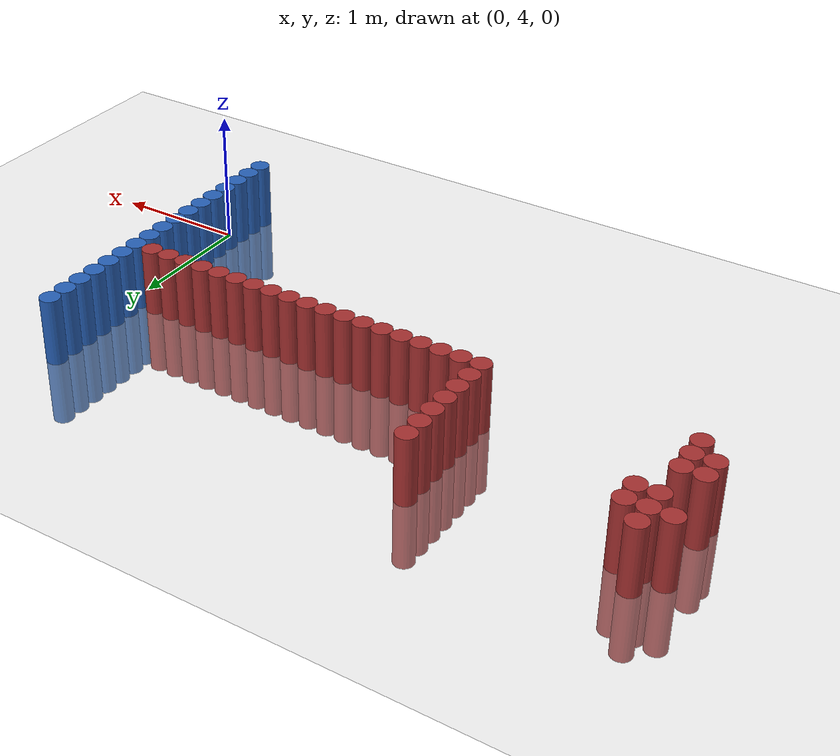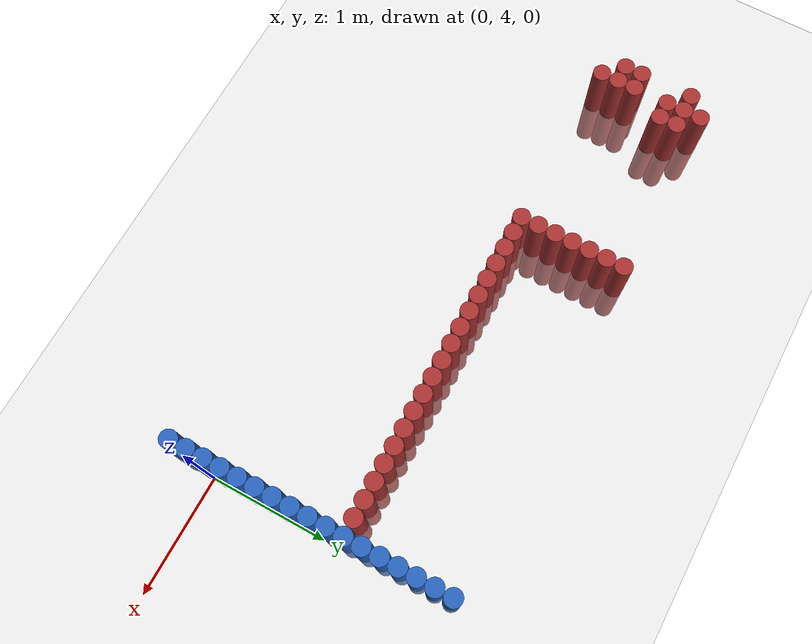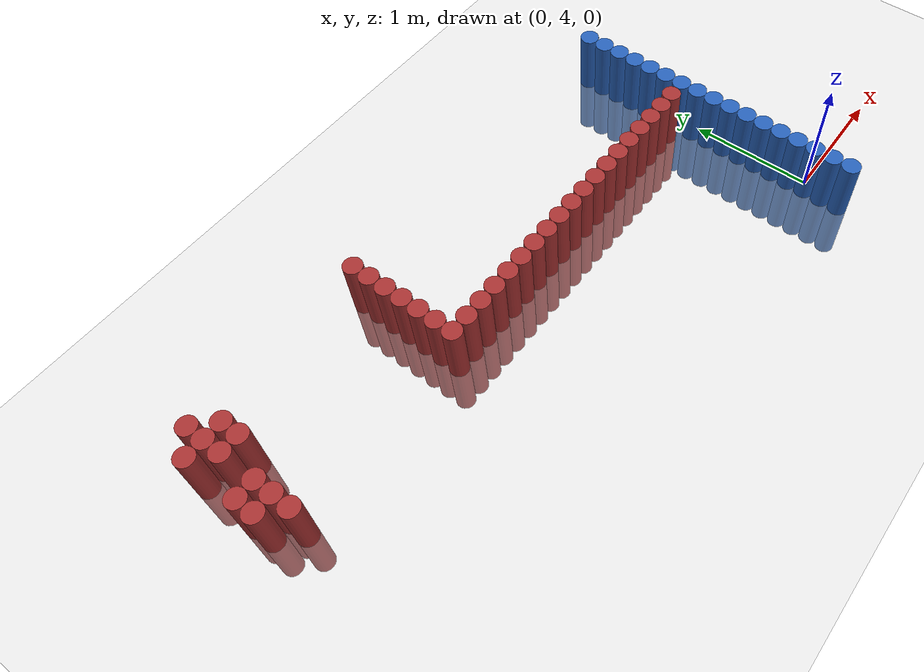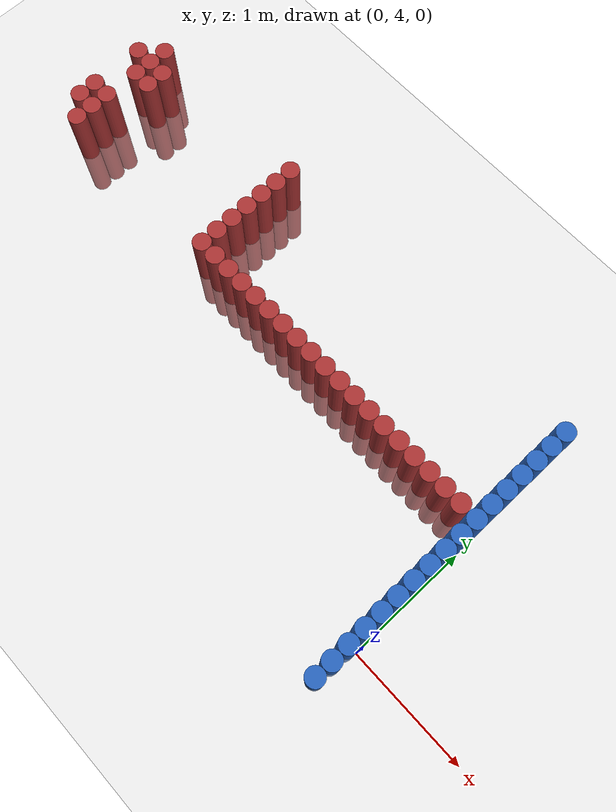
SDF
<sdf version="1.6">
 <world name="default">
  <model name="ground_plane">
   <static>1</static>
   <link name="link">
    <collision name="collision">
     <geometry><plane><normal>0 0 1</normal><size>100 100</size></plane></geometry>
     <surface><friction><ode><mu>100</mu><mu2>50</mu2></ode></friction></surface>
    </collision>
    <visual name="visual">
     <cast_shadows>0</cast_shadows>
     <geometry><plane><normal>0 0 1</normal><size>100 100</size></plane></geometry>
     <material>
      <script><uri>file://media/materials/scripts/gazebo.material</uri><name>Gazebo/Grey</name></script>
     </material>
    </visual>
   </link>
  </model>
  <model name="unit_cylinder_105">
   <static>1</static>
   <pose>-0.075000 3.675000 0.000000 0.000000 0.000000 0.000000</pose>
   <link name="link">
    <inertial>
     <mass>1</mass>
     <inertia><ixx>0.145833</ixx><ixy>0</ixy><ixz>0</ixz><iyy>0.145833</iyy><iyz>0</iyz><izz>0.125</izz></inertia>
    </inertial>
    <collision name="collision">
     <geometry><cylinder><radius>0.075000</radius><length>1</length></cylinder></geometry>
    </collision>
    <visual name="visual">
     <geometry><cylinder><radius>0.075000</radius><length>1</length></cylinder></geometry>
     <material>
      <ambient>0.152000 0.379000 0.720000 1</ambient>
      <diffuse>0.152000 0.379000 0.720000 1</diffuse>
     </material>
     <material>
      <script><name>Gazebo/Grey</name><uri>file://media/materials/scripts/gazebo.material</uri></script>
     </material>
    </visual>
   </link>
  </model>
  <model name="unit_cylinder_107">
   <static>1</static>
   <pose>-0.075000 3.825000 0.000000 0.000000 0.000000 0.000000</pose>
   <link name="link">
    <inertial>
     <mass>1</mass>
     <inertia><ixx>0.145833</ixx><ixy>0</ixy><ixz>0</ixz><iyy>0.145833</iyy><iyz>0</iyz><izz>0.125</izz></inertia>
    </inertial>
    <collision name="collision">
     <geometry><cylinder><radius>0.075000</radius><length>1</length></cylinder></geometry>
    </collision>
    <visual name="visual">
     <geometry><cylinder><radius>0.075000</radius><length>1</length></cylinder></geometry>
     <material>
      <ambient>0.152000 0.379000 0.720000 1</ambient>
      <diffuse>0.152000 0.379000 0.720000 1</diffuse>
     </material>
     <material>
      <script><name>Gazebo/Grey</name><uri>file://media/materials/scripts/gazebo.material</uri></script>
     </material>
    </visual>
   </link>
  </model>
  <model name="unit_cylinder_109">
   <static>1</static>
   <pose>-0.075000 3.975000 0.000000 0.000000 0.000000 0.000000</pose>
   <link name="link">
    <inertial>
     <mass>1</mass>
     <inertia><ixx>0.145833</ixx><ixy>0</ixy><ixz>0</ixz><iyy>0.145833</iyy><iyz>0</iyz><izz>0.125</izz></inertia>
    </inertial>
    <collision name="collision">
     <geometry><cylinder><radius>0.075000</radius><length>1</length></cylinder></geometry>
    </collision>
    <visual name="visual">
     <geometry><cylinder><radius>0.075000</radius><length>1</length></cylinder></geometry>
     <material>
      <ambient>0.152000 0.379000 0.720000 1</ambient>
      <diffuse>0.152000 0.379000 0.720000 1</diffuse>
     </material>
     <material>
      <script><name>Gazebo/Grey</name><uri>file://media/materials/scripts/gazebo.material</uri></script>
     </material>
    </visual>
   </link>
  </model>
  <model name="unit_cylinder_111">
   <static>1</static>
   <pose>-0.075000 4.125000 0.000000 0.000000 0.000000 0.000000</pose>
   <link name="link">
    <inertial>
     <mass>1</mass>
     <inertia><ixx>0.145833</ixx><ixy>0</ixy><ixz>0</ixz><iyy>0.145833</iyy><iyz>0</iyz><izz>0.125</izz></inertia>
    </inertial>
    <collision name="collision">
     <geometry><cylinder><radius>0.075000</radius><length>1</length></cylinder></geometry>
    </collision>
    <visual name="visual">
     <geometry><cylinder><radius>0.075000</radius><length>1</length></cylinder></geometry>
     <material>
      <ambient>0.152000 0.379000 0.720000 1</ambient>
      <diffuse>0.152000 0.379000 0.720000 1</diffuse>
     </material>
     <material>
      <script><name>Gazebo/Grey</name><uri>file://media/materials/scripts/gazebo.material</uri></script>
     </material>
    </visual>
   </link>
  </model>
  <model name="unit_cylinder_113">
   <static>1</static>
   <pose>-0.075000 4.275000 0.000000 0.000000 0.000000 0.000000</pose>
   <link name="link">
    <inertial>
     <mass>1</mass>
     <inertia><ixx>0.145833</ixx><ixy>0</ixy><ixz>0</ixz><iyy>0.145833</iyy><iyz>0</iyz><izz>0.125</izz></inertia>
    </inertial>
    <collision name="collision">
     <geometry><cylinder><radius>0.075000</radius><length>1</length></cylinder></geometry>
    </collision>
    <visual name="visual">
     <geometry><cylinder><radius>0.075000</radius><length>1</length></cylinder></geometry>
     <material>
      <ambient>0.152000 0.379000 0.720000 1</ambient>
      <diffuse>0.152000 0.379000 0.720000 1</diffuse>
     </material>
     <material>
      <script><name>Gazebo/Grey</name><uri>file://media/materials/scripts/gazebo.material</uri></script>
     </material>
    </visual>
   </link>
  </model>
  <model name="unit_cylinder_115">
   <static>1</static>
   <pose>-0.075000 4.425000 0.000000 0.000000 0.000000 0.000000</pose>
   <link name="link">
    <inertial>
     <mass>1</mass>
     <inertia><ixx>0.145833</ixx><ixy>0</ixy><ixz>0</ixz><iyy>0.145833</iyy><iyz>0</iyz><izz>0.125</izz></inertia>
    </inertial>
    <collision name="collision">
     <geometry><cylinder><radius>0.075000</radius><length>1</length></cylinder></geometry>
    </collision>
    <visual name="visual">
     <geometry><cylinder><radius>0.075000</radius><length>1</length></cylinder></geometry>
     <material>
      <ambient>0.152000 0.379000 0.720000 1</ambient>
      <diffuse>0.152000 0.379000 0.720000 1</diffuse>
     </material>
     <material>
      <script><name>Gazebo/Grey</name><uri>file://media/materials/scripts/gazebo.material</uri></script>
     </material>
    </visual>
   </link>
  </model>
  <model name="unit_cylinder_117">
   <static>1</static>
   <pose>-0.075000 4.575000 0.000000 0.000000 0.000000 0.000000</pose>
   <link name="link">
    <inertial>
     <mass>1</mass>
     <inertia><ixx>0.145833</ixx><ixy>0</ixy><ixz>0</ixz><iyy>0.145833</iyy><iyz>0</iyz><izz>0.125</izz></inertia>
    </inertial>
    <collision name="collision">
     <geometry><cylinder><radius>0.075000</radius><length>1</length></cylinder></geometry>
    </collision>
    <visual name="visual">
     <geometry><cylinder><radius>0.075000</radius><length>1</length></cylinder></geometry>
     <material>
      <ambient>0.152000 0.379000 0.720000 1</ambient>
      <diffuse>0.152000 0.379000 0.720000 1</diffuse>
     </material>
     <material>
      <script><name>Gazebo/Grey</name><uri>file://media/materials/scripts/gazebo.material</uri></script>
     </material>
    </visual>
   </link>
  </model>
  <model name="unit_cylinder_119">
   <static>1</static>
   <pose>-0.075000 4.725000 0.000000 0.000000 0.000000 0.000000</pose>
   <link name="link">
    <inertial>
     <mass>1</mass>
     <inertia><ixx>0.145833</ixx><ixy>0</ixy><ixz>0</ixz><iyy>0.145833</iyy><iyz>0</iyz><izz>0.125</izz></inertia>
    </inertial>
    <collision name="collision">
     <geometry><cylinder><radius>0.075000</radius><length>1</length></cylinder></geometry>
    </collision>
    <visual name="visual">
     <geometry><cylinder><radius>0.075000</radius><length>1</length></cylinder></geometry>
     <material>
      <ambient>0.152000 0.379000 0.720000 1</ambient>
      <diffuse>0.152000 0.379000 0.720000 1</diffuse>
     </material>
     <material>
      <script><name>Gazebo/Grey</name><uri>file://media/materials/scripts/gazebo.material</uri></script>
     </material>
    </visual>
   </link>
  </model>
  <model name="unit_cylinder_121">
   <static>1</static>
   <pose>-0.075000 4.875000 0.000000 0.000000 0.000000 0.000000</pose>
   <link name="link">
    <inertial>
     <mass>1</mass>
     <inertia><ixx>0.145833</ixx><ixy>0</ixy><ixz>0</ixz><iyy>0.145833</iyy><iyz>0</iyz><izz>0.125</izz></inertia>
    </inertial>
    <collision name="collision">
     <geometry><cylinder><radius>0.075000</radius><length>1</length></cylinder></geometry>
    </collision>
    <visual name="visual">
     <geometry><cylinder><radius>0.075000</radius><length>1</length></cylinder></geometry>
     <material>
      <ambient>0.152000 0.379000 0.720000 1</ambient>
      <diffuse>0.152000 0.379000 0.720000 1</diffuse>
     </material>
     <material>
      <script><name>Gazebo/Grey</name><uri>file://media/materials/scripts/gazebo.material</uri></script>
     </material>
    </visual>
   </link>
  </model>
  <model name="unit_cylinder_123">
   <static>1</static>
   <pose>-0.075000 5.025000 0.000000 0.000000 0.000000 0.000000</pose>
   <link name="link">
    <inertial>
     <mass>1</mass>
     <inertia><ixx>0.145833</ixx><ixy>0</ixy><ixz>0</ixz><iyy>0.145833</iyy><iyz>0</iyz><izz>0.125</izz></inertia>
    </inertial>
    <collision name="collision">
     <geometry><cylinder><radius>0.075000</radius><length>1</length></cylinder></geometry>
    </collision>
    <visual name="visual">
     <geometry><cylinder><radius>0.075000</radius><length>1</length></cylinder></geometry>
     <material>
      <ambient>0.152000 0.379000 0.720000 1</ambient>
      <diffuse>0.152000 0.379000 0.720000 1</diffuse>
     </material>
     <material>
      <script><name>Gazebo/Grey</name><uri>file://media/materials/scripts/gazebo.material</uri></script>
     </material>
    </visual>
   </link>
  </model>
  <model name="unit_cylinder_295">
   <static>1</static>
   <pose>-4.575000 5.325000 0.000000 0.000000 0.000000 0.000000</pose>
   <link name="link">
    <inertial>
     <mass>1</mass>
     <inertia><ixx>0.145833</ixx><ixy>0</ixy><ixz>0</ixz><iyy>0.145833</iyy><iyz>0</iyz><izz>0.125</izz></inertia>
    </inertial>
    <collision name="collision">
     <geometry><cylinder><radius>0.075000</radius><length>1</length></cylinder></geometry>
    </collision>
    <visual name="visual">
     <geometry><cylinder><radius>0.075000</radius><length>1</length></cylinder></geometry>
     <material>
      <ambient>0.648000 0.192000 0.192000 1</ambient>
      <diffuse>0.648000 0.192000 0.192000 1</diffuse>
     </material>
     <material>
      <script><name>Gazebo/Grey</name><uri>file://media/materials/scripts/gazebo.material</uri></script>
     </material>
    </visual>
   </link>
  </model>
  <model name="unit_cylinder_296">
   <static>1</static>
   <pose>-4.575000 5.475000 0.000000 0.000000 0.000000 0.000000</pose>
   <link name="link">
    <inertial>
     <mass>1</mass>
     <inertia><ixx>0.145833</ixx><ixy>0</ixy><ixz>0</ixz><iyy>0.145833</iyy><iyz>0</iyz><izz>0.125</izz></inertia>
    </inertial>
    <collision name="collision">
     <geometry><cylinder><radius>0.075000</radius><length>1</length></cylinder></geometry>
    </collision>
    <visual name="visual">
     <geometry><cylinder><radius>0.075000</radius><length>1</length></cylinder></geometry>
     <material>
      <ambient>0.648000 0.192000 0.192000 1</ambient>
      <diffuse>0.648000 0.192000 0.192000 1</diffuse>
     </material>
     <material>
      <script><name>Gazebo/Grey</name><uri>file://media/materials/scripts/gazebo.material</uri></script>
     </material>
    </visual>
   </link>
  </model>
  <model name="unit_cylinder_297">
   <static>1</static>
   <pose>-4.575000 5.925000 0.000000 0.000000 0.000000 0.000000</pose>
   <link name="link">
    <inertial>
     <mass>1</mass>
     <inertia><ixx>0.145833</ixx><ixy>0</ixy><ixz>0</ixz><iyy>0.145833</iyy><iyz>0</iyz><izz>0.125</izz></inertia>
    </inertial>
    <collision name="collision">
     <geometry><cylinder><radius>0.075000</radius><length>1</length></cylinder></geometry>
    </collision>
    <visual name="visual">
     <geometry><cylinder><radius>0.075000</radius><length>1</length></cylinder></geometry>
     <material>
      <ambient>0.648000 0.192000 0.192000 1</ambient>
      <diffuse>0.648000 0.192000 0.192000 1</diffuse>
     </material>
     <material>
      <script><name>Gazebo/Grey</name><uri>file://media/materials/scripts/gazebo.material</uri></script>
     </material>
    </visual>
   </link>
  </model>
  <model name="unit_cylinder_301">
   <static>1</static>
   <pose>-4.425000 5.175000 0.000000 0.000000 0.000000 0.000000</pose>
   <link name="link">
    <inertial>
     <mass>1</mass>
     <inertia><ixx>0.145833</ixx><ixy>0</ixy><ixz>0</ixz><iyy>0.145833</iyy><iyz>0</iyz><izz>0.125</izz></inertia>
    </inertial>
    <collision name="collision">
     <geometry><cylinder><radius>0.075000</radius><length>1</length></cylinder></geometry>
    </collision>
    <visual name="visual">
     <geometry><cylinder><radius>0.075000</radius><length>1</length></cylinder></geometry>
     <material>
      <ambient>0.648000 0.192000 0.192000 1</ambient>
      <diffuse>0.648000 0.192000 0.192000 1</diffuse>
     </material>
     <material>
      <script><name>Gazebo/Grey</name><uri>file://media/materials/scripts/gazebo.material</uri></script>
     </material>
    </visual>
   </link>
  </model>
  <model name="unit_cylinder_302">
   <static>1</static>
   <pose>-4.425000 5.325000 0.000000 0.000000 0.000000 0.000000</pose>
   <link name="link">
    <inertial>
     <mass>1</mass>
     <inertia><ixx>0.145833</ixx><ixy>0</ixy><ixz>0</ixz><iyy>0.145833</iyy><iyz>0</iyz><izz>0.125</izz></inertia>
    </inertial>
    <collision name="collision">
     <geometry><cylinder><radius>0.075000</radius><length>1</length></cylinder></geometry>
    </collision>
    <visual name="visual">
     <geometry><cylinder><radius>0.075000</radius><length>1</length></cylinder></geometry>
     <material>
      <ambient>0.648000 0.192000 0.192000 1</ambient>
      <diffuse>0.648000 0.192000 0.192000 1</diffuse>
     </material>
     <material>
      <script><name>Gazebo/Grey</name><uri>file://media/materials/scripts/gazebo.material</uri></script>
     </material>
    </visual>
   </link>
  </model>
  <model name="unit_cylinder_303">
   <static>1</static>
   <pose>-4.425000 5.475000 0.000000 0.000000 0.000000 0.000000</pose>
   <link name="link">
    <inertial>
     <mass>1</mass>
     <inertia><ixx>0.145833</ixx><ixy>0</ixy><ixz>0</ixz><iyy>0.145833</iyy><iyz>0</iyz><izz>0.125</izz></inertia>
    </inertial>
    <collision name="collision">
     <geometry><cylinder><radius>0.075000</radius><length>1</length></cylinder></geometry>
    </collision>
    <visual name="visual">
     <geometry><cylinder><radius>0.075000</radius><length>1</length></cylinder></geometry>
     <material>
      <ambient>0.648000 0.192000 0.192000 1</ambient>
      <diffuse>0.648000 0.192000 0.192000 1</diffuse>
     </material>
     <material>
      <script><name>Gazebo/Grey</name><uri>file://media/materials/scripts/gazebo.material</uri></script>
     </material>
    </visual>
   </link>
  </model>
  <model name="unit_cylinder_304">
   <static>1</static>
   <pose>-4.425000 5.775000 0.000000 0.000000 0.000000 0.000000</pose>
   <link name="link">
    <inertial>
     <mass>1</mass>
     <inertia><ixx>0.145833</ixx><ixy>0</ixy><ixz>0</ixz><iyy>0.145833</iyy><iyz>0</iyz><izz>0.125</izz></inertia>
    </inertial>
    <collision name="collision">
     <geometry><cylinder><radius>0.075000</radius><length>1</length></cylinder></geometry>
    </collision>
    <visual name="visual">
     <geometry><cylinder><radius>0.075000</radius><length>1</length></cylinder></geometry>
     <material>
      <ambient>0.648000 0.192000 0.192000 1</ambient>
      <diffuse>0.648000 0.192000 0.192000 1</diffuse>
     </material>
     <material>
      <script><name>Gazebo/Grey</name><uri>file://media/materials/scripts/gazebo.material</uri></script>
     </material>
    </visual>
   </link>
  </model>
  <model name="unit_cylinder_305">
   <static>1</static>
   <pose>-4.425000 5.925000 0.000000 0.000000 0.000000 0.000000</pose>
   <link name="link">
    <inertial>
     <mass>1</mass>
     <inertia><ixx>0.145833</ixx><ixy>0</ixy><ixz>0</ixz><iyy>0.145833</iyy><iyz>0</iyz><izz>0.125</izz></inertia>
    </inertial>
    <collision name="collision">
     <geometry><cylinder><radius>0.075000</radius><length>1</length></cylinder></geometry>
    </collision>
    <visual name="visual">
     <geometry><cylinder><radius>0.075000</radius><length>1</length></cylinder></geometry>
     <material>
      <ambient>0.648000 0.192000 0.192000 1</ambient>
      <diffuse>0.648000 0.192000 0.192000 1</diffuse>
     </material>
     <material>
      <script><name>Gazebo/Grey</name><uri>file://media/materials/scripts/gazebo.material</uri></script>
     </material>
    </visual>
   </link>
  </model>
  <model name="unit_cylinder_306">
   <static>1</static>
   <pose>-4.425000 6.075000 0.000000 0.000000 0.000000 0.000000</pose>
   <link name="link">
    <inertial>
     <mass>1</mass>
     <inertia><ixx>0.145833</ixx><ixy>0</ixy><ixz>0</ixz><iyy>0.145833</iyy><iyz>0</iyz><izz>0.125</izz></inertia>
    </inertial>
    <collision name="collision">
     <geometry><cylinder><radius>0.075000</radius><length>1</length></cylinder></geometry>
    </collision>
    <visual name="visual">
     <geometry><cylinder><radius>0.075000</radius><length>1</length></cylinder></geometry>
     <material>
      <ambient>0.648000 0.192000 0.192000 1</ambient>
      <diffuse>0.648000 0.192000 0.192000 1</diffuse>
     </material>
     <material>
      <script><name>Gazebo/Grey</name><uri>file://media/materials/scripts/gazebo.material</uri></script>
     </material>
    </visual>
   </link>
  </model>
  <model name="unit_cylinder_310">
   <static>1</static>
   <pose>-4.275000 5.775000 0.000000 0.000000 0.000000 0.000000</pose>
   <link name="link">
    <inertial>
     <mass>1</mass>
     <inertia><ixx>0.145833</ixx><ixy>0</ixy><ixz>0</ixz><iyy>0.145833</iyy><iyz>0</iyz><izz>0.125</izz></inertia>
    </inertial>
    <collision name="collision">
     <geometry><cylinder><radius>0.075000</radius><length>1</length></cylinder></geometry>
    </collision>
    <visual name="visual">
     <geometry><cylinder><radius>0.075000</radius><length>1</length></cylinder></geometry>
     <material>
      <ambient>0.648000 0.192000 0.192000 1</ambient>
      <diffuse>0.648000 0.192000 0.192000 1</diffuse>
     </material>
     <material>
      <script><name>Gazebo/Grey</name><uri>file://media/materials/scripts/gazebo.material</uri></script>
     </material>
    </visual>
   </link>
  </model>
  <model name="unit_cylinder_311">
   <static>1</static>
   <pose>-4.275000 5.925000 0.000000 0.000000 0.000000 0.000000</pose>
   <link name="link">
    <inertial>
     <mass>1</mass>
     <inertia><ixx>0.145833</ixx><ixy>0</ixy><ixz>0</ixz><iyy>0.145833</iyy><iyz>0</iyz><izz>0.125</izz></inertia>
    </inertial>
    <collision name="collision">
     <geometry><cylinder><radius>0.075000</radius><length>1</length></cylinder></geometry>
    </collision>
    <visual name="visual">
     <geometry><cylinder><radius>0.075000</radius><length>1</length></cylinder></geometry>
     <material>
      <ambient>0.648000 0.192000 0.192000 1</ambient>
      <diffuse>0.648000 0.192000 0.192000 1</diffuse>
     </material>
     <material>
      <script><name>Gazebo/Grey</name><uri>file://media/materials/scripts/gazebo.material</uri></script>
     </material>
    </visual>
   </link>
  </model>
  <model name="unit_cylinder_340">
   <static>1</static>
   <pose>-2.925000 5.175000 0.000000 0.000000 0.000000 0.000000</pose>
   <link name="link">
    <inertial>
     <mass>1</mass>
     <inertia><ixx>0.145833</ixx><ixy>0</ixy><ixz>0</ixz><iyy>0.145833</iyy><iyz>0</iyz><izz>0.125</izz></inertia>
    </inertial>
    <collision name="collision">
     <geometry><cylinder><radius>0.075000</radius><length>1</length></cylinder></geometry>
    </collision>
    <visual name="visual">
     <geometry><cylinder><radius>0.075000</radius><length>1</length></cylinder></geometry>
     <material>
      <ambient>0.648000 0.192000 0.192000 1</ambient>
      <diffuse>0.648000 0.192000 0.192000 1</diffuse>
     </material>
     <material>
      <script><name>Gazebo/Grey</name><uri>file://media/materials/scripts/gazebo.material</uri></script>
     </material>
    </visual>
   </link>
  </model>
  <model name="unit_cylinder_341">
   <static>1</static>
   <pose>-2.925000 5.325000 0.000000 0.000000 0.000000 0.000000</pose>
   <link name="link">
    <inertial>
     <mass>1</mass>
     <inertia><ixx>0.145833</ixx><ixy>0</ixy><ixz>0</ixz><iyy>0.145833</iyy><iyz>0</iyz><izz>0.125</izz></inertia>
    </inertial>
    <collision name="collision">
     <geometry><cylinder><radius>0.075000</radius><length>1</length></cylinder></geometry>
    </collision>
    <visual name="visual">
     <geometry><cylinder><radius>0.075000</radius><length>1</length></cylinder></geometry>
     <material>
      <ambient>0.648000 0.192000 0.192000 1</ambient>
      <diffuse>0.648000 0.192000 0.192000 1</diffuse>
     </material>
     <material>
      <script><name>Gazebo/Grey</name><uri>file://media/materials/scripts/gazebo.material</uri></script>
     </material>
    </visual>
   </link>
  </model>
  <model name="unit_cylinder_342">
   <static>1</static>
   <pose>-2.925000 5.475000 0.000000 0.000000 0.000000 0.000000</pose>
   <link name="link">
    <inertial>
     <mass>1</mass>
     <inertia><ixx>0.145833</ixx><ixy>0</ixy><ixz>0</ixz><iyy>0.145833</iyy><iyz>0</iyz><izz>0.125</izz></inertia>
    </inertial>
    <collision name="collision">
     <geometry><cylinder><radius>0.075000</radius><length>1</length></cylinder></geometry>
    </collision>
    <visual name="visual">
     <geometry><cylinder><radius>0.075000</radius><length>1</length></cylinder></geometry>
     <material>
      <ambient>0.648000 0.192000 0.192000 1</ambient>
      <diffuse>0.648000 0.192000 0.192000 1</diffuse>
     </material>
     <material>
      <script><name>Gazebo/Grey</name><uri>file://media/materials/scripts/gazebo.material</uri></script>
     </material>
    </visual>
   </link>
  </model>
  <model name="unit_cylinder_343">
   <static>1</static>
   <pose>-2.925000 5.625000 0.000000 0.000000 0.000000 0.000000</pose>
   <link name="link">
    <inertial>
     <mass>1</mass>
     <inertia><ixx>0.145833</ixx><ixy>0</ixy><ixz>0</ixz><iyy>0.145833</iyy><iyz>0</iyz><izz>0.125</izz></inertia>
    </inertial>
    <collision name="collision">
     <geometry><cylinder><radius>0.075000</radius><length>1</length></cylinder></geometry>
    </collision>
    <visual name="visual">
     <geometry><cylinder><radius>0.075000</radius><length>1</length></cylinder></geometry>
     <material>
      <ambient>0.648000 0.192000 0.192000 1</ambient>
      <diffuse>0.648000 0.192000 0.192000 1</diffuse>
     </material>
     <material>
      <script><name>Gazebo/Grey</name><uri>file://media/materials/scripts/gazebo.material</uri></script>
     </material>
    </visual>
   </link>
  </model>
  <model name="unit_cylinder_344">
   <static>1</static>
   <pose>-2.925000 5.775000 0.000000 0.000000 0.000000 0.000000</pose>
   <link name="link">
    <inertial>
     <mass>1</mass>
     <inertia><ixx>0.145833</ixx><ixy>0</ixy><ixz>0</ixz><iyy>0.145833</iyy><iyz>0</iyz><izz>0.125</izz></inertia>
    </inertial>
    <collision name="collision">
     <geometry><cylinder><radius>0.075000</radius><length>1</length></cylinder></geometry>
    </collision>
    <visual name="visual">
     <geometry><cylinder><radius>0.075000</radius><length>1</length></cylinder></geometry>
     <material>
      <ambient>0.648000 0.192000 0.192000 1</ambient>
      <diffuse>0.648000 0.192000 0.192000 1</diffuse>
     </material>
     <material>
      <script><name>Gazebo/Grey</name><uri>file://media/materials/scripts/gazebo.material</uri></script>
     </material>
    </visual>
   </link>
  </model>
  <model name="unit_cylinder_345">
   <static>1</static>
   <pose>-2.925000 5.925000 0.000000 0.000000 0.000000 0.000000</pose>
   <link name="link">
    <inertial>
     <mass>1</mass>
     <inertia><ixx>0.145833</ixx><ixy>0</ixy><ixz>0</ixz><iyy>0.145833</iyy><iyz>0</iyz><izz>0.125</izz></inertia>
    </inertial>
    <collision name="collision">
     <geometry><cylinder><radius>0.075000</radius><length>1</length></cylinder></geometry>
    </collision>
    <visual name="visual">
     <geometry><cylinder><radius>0.075000</radius><length>1</length></cylinder></geometry>
     <material>
      <ambient>0.648000 0.192000 0.192000 1</ambient>
      <diffuse>0.648000 0.192000 0.192000 1</diffuse>
     </material>
     <material>
      <script><name>Gazebo/Grey</name><uri>file://media/materials/scripts/gazebo.material</uri></script>
     </material>
    </visual>
   </link>
  </model>
  <model name="unit_cylinder_346">
   <static>1</static>
   <pose>-2.925000 6.075000 0.000000 0.000000 0.000000 0.000000</pose>
   <link name="link">
    <inertial>
     <mass>1</mass>
     <inertia><ixx>0.145833</ixx><ixy>0</ixy><ixz>0</ixz><iyy>0.145833</iyy><iyz>0</iyz><izz>0.125</izz></inertia>
    </inertial>
    <collision name="collision">
     <geometry><cylinder><radius>0.075000</radius><length>1</length></cylinder></geometry>
    </collision>
    <visual name="visual">
     <geometry><cylinder><radius>0.075000</radius><length>1</length></cylinder></geometry>
     <material>
      <ambient>0.648000 0.192000 0.192000 1</ambient>
      <diffuse>0.648000 0.192000 0.192000 1</diffuse>
     </material>
     <material>
      <script><name>Gazebo/Grey</name><uri>file://media/materials/scripts/gazebo.material</uri></script>
     </material>
    </visual>
   </link>
  </model>
  <model name="unit_cylinder_356">
   <static>1</static>
   <pose>-2.775000 5.175000 0.000000 0.000000 0.000000 0.000000</pose>
   <link name="link">
    <inertial>
     <mass>1</mass>
     <inertia><ixx>0.145833</ixx><ixy>0</ixy><ixz>0</ixz><iyy>0.145833</iyy><iyz>0</iyz><izz>0.125</izz></inertia>
    </inertial>
    <collision name="collision">
     <geometry><cylinder><radius>0.075000</radius><length>1</length></cylinder></geometry>
    </collision>
    <visual name="visual">
     <geometry><cylinder><radius>0.075000</radius><length>1</length></cylinder></geometry>
     <material>
      <ambient>0.648000 0.192000 0.192000 1</ambient>
      <diffuse>0.648000 0.192000 0.192000 1</diffuse>
     </material>
     <material>
      <script><name>Gazebo/Grey</name><uri>file://media/materials/scripts/gazebo.material</uri></script>
     </material>
    </visual>
   </link>
  </model>
  <model name="unit_cylinder_358">
   <static>1</static>
   <pose>-2.625000 5.175000 0.000000 0.000000 0.000000 0.000000</pose>
   <link name="link">
    <inertial>
     <mass>1</mass>
     <inertia><ixx>0.145833</ixx><ixy>0</ixy><ixz>0</ixz><iyy>0.145833</iyy><iyz>0</iyz><izz>0.125</izz></inertia>
    </inertial>
    <collision name="collision">
     <geometry><cylinder><radius>0.075000</radius><length>1</length></cylinder></geometry>
    </collision>
    <visual name="visual">
     <geometry><cylinder><radius>0.075000</radius><length>1</length></cylinder></geometry>
     <material>
      <ambient>0.648000 0.192000 0.192000 1</ambient>
      <diffuse>0.648000 0.192000 0.192000 1</diffuse>
     </material>
     <material>
      <script><name>Gazebo/Grey</name><uri>file://media/materials/scripts/gazebo.material</uri></script>
     </material>
    </visual>
   </link>
  </model>
  <model name="unit_cylinder_360">
   <static>1</static>
   <pose>-2.475000 5.175000 0.000000 0.000000 0.000000 0.000000</pose>
   <link name="link">
    <inertial>
     <mass>1</mass>
     <inertia><ixx>0.145833</ixx><ixy>0</ixy><ixz>0</ixz><iyy>0.145833</iyy><iyz>0</iyz><izz>0.125</izz></inertia>
    </inertial>
    <collision name="collision">
     <geometry><cylinder><radius>0.075000</radius><length>1</length></cylinder></geometry>
    </collision>
    <visual name="visual">
     <geometry><cylinder><radius>0.075000</radius><length>1</length></cylinder></geometry>
     <material>
      <ambient>0.648000 0.192000 0.192000 1</ambient>
      <diffuse>0.648000 0.192000 0.192000 1</diffuse>
     </material>
     <material>
      <script><name>Gazebo/Grey</name><uri>file://media/materials/scripts/gazebo.material</uri></script>
     </material>
    </visual>
   </link>
  </model>
  <model name="unit_cylinder_362">
   <static>1</static>
   <pose>-2.325000 5.175000 0.000000 0.000000 0.000000 0.000000</pose>
   <link name="link">
    <inertial>
     <mass>1</mass>
     <inertia><ixx>0.145833</ixx><ixy>0</ixy><ixz>0</ixz><iyy>0.145833</iyy><iyz>0</iyz><izz>0.125</izz></inertia>
    </inertial>
    <collision name="collision">
     <geometry><cylinder><radius>0.075000</radius><length>1</length></cylinder></geometry>
    </collision>
    <visual name="visual">
     <geometry><cylinder><radius>0.075000</radius><length>1</length></cylinder></geometry>
     <material>
      <ambient>0.648000 0.192000 0.192000 1</ambient>
      <diffuse>0.648000 0.192000 0.192000 1</diffuse>
     </material>
     <material>
      <script><name>Gazebo/Grey</name><uri>file://media/materials/scripts/gazebo.material</uri></script>
     </material>
    </visual>
   </link>
  </model>
  <model name="unit_cylinder_364">
   <static>1</static>
   <pose>-2.175000 5.175000 0.000000 0.000000 0.000000 0.000000</pose>
   <link name="link">
    <inertial>
     <mass>1</mass>
     <inertia><ixx>0.145833</ixx><ixy>0</ixy><ixz>0</ixz><iyy>0.145833</iyy><iyz>0</iyz><izz>0.125</izz></inertia>
    </inertial>
    <collision name="collision">
     <geometry><cylinder><radius>0.075000</radius><length>1</length></cylinder></geometry>
    </collision>
    <visual name="visual">
     <geometry><cylinder><radius>0.075000</radius><length>1</length></cylinder></geometry>
     <material>
      <ambient>0.648000 0.192000 0.192000 1</ambient>
      <diffuse>0.648000 0.192000 0.192000 1</diffuse>
     </material>
     <material>
      <script><name>Gazebo/Grey</name><uri>file://media/materials/scripts/gazebo.material</uri></script>
     </material>
    </visual>
   </link>
  </model>
  <model name="unit_cylinder_366">
   <static>1</static>
   <pose>-2.025000 5.175000 0.000000 0.000000 0.000000 0.000000</pose>
   <link name="link">
    <inertial>
     <mass>1</mass>
     <inertia><ixx>0.145833</ixx><ixy>0</ixy><ixz>0</ixz><iyy>0.145833</iyy><iyz>0</iyz><izz>0.125</izz></inertia>
    </inertial>
    <collision name="collision">
     <geometry><cylinder><radius>0.075000</radius><length>1</length></cylinder></geometry>
    </collision>
    <visual name="visual">
     <geometry><cylinder><radius>0.075000</radius><length>1</length></cylinder></geometry>
     <material>
      <ambient>0.648000 0.192000 0.192000 1</ambient>
      <diffuse>0.648000 0.192000 0.192000 1</diffuse>
     </material>
     <material>
      <script><name>Gazebo/Grey</name><uri>file://media/materials/scripts/gazebo.material</uri></script>
     </material>
    </visual>
   </link>
  </model>
  <model name="unit_cylinder_368">
   <static>1</static>
   <pose>-1.875000 5.175000 0.000000 0.000000 0.000000 0.000000</pose>
   <link name="link">
    <inertial>
     <mass>1</mass>
     <inertia><ixx>0.145833</ixx><ixy>0</ixy><ixz>0</ixz><iyy>0.145833</iyy><iyz>0</iyz><izz>0.125</izz></inertia>
    </inertial>
    <collision name="collision">
     <geometry><cylinder><radius>0.075000</radius><length>1</length></cylinder></geometry>
    </collision>
    <visual name="visual">
     <geometry><cylinder><radius>0.075000</radius><length>1</length></cylinder></geometry>
     <material>
      <ambient>0.648000 0.192000 0.192000 1</ambient>
      <diffuse>0.648000 0.192000 0.192000 1</diffuse>
     </material>
     <material>
      <script><name>Gazebo/Grey</name><uri>file://media/materials/scripts/gazebo.material</uri></script>
     </material>
    </visual>
   </link>
  </model>
  <model name="unit_cylinder_370">
   <static>1</static>
   <pose>-1.725000 5.175000 0.000000 0.000000 0.000000 0.000000</pose>
   <link name="link">
    <inertial>
     <mass>1</mass>
     <inertia><ixx>0.145833</ixx><ixy>0</ixy><ixz>0</ixz><iyy>0.145833</iyy><iyz>0</iyz><izz>0.125</izz></inertia>
    </inertial>
    <collision name="collision">
     <geometry><cylinder><radius>0.075000</radius><length>1</length></cylinder></geometry>
    </collision>
    <visual name="visual">
     <geometry><cylinder><radius>0.075000</radius><length>1</length></cylinder></geometry>
     <material>
      <ambient>0.648000 0.192000 0.192000 1</ambient>
      <diffuse>0.648000 0.192000 0.192000 1</diffuse>
     </material>
     <material>
      <script><name>Gazebo/Grey</name><uri>file://media/materials/scripts/gazebo.material</uri></script>
     </material>
    </visual>
   </link>
  </model>
  <model name="unit_cylinder_372">
   <static>1</static>
   <pose>-1.575000 5.175000 0.000000 0.000000 0.000000 0.000000</pose>
   <link name="link">
    <inertial>
     <mass>1</mass>
     <inertia><ixx>0.145833</ixx><ixy>0</ixy><ixz>0</ixz><iyy>0.145833</iyy><iyz>0</iyz><izz>0.125</izz></inertia>
    </inertial>
    <collision name="collision">
     <geometry><cylinder><radius>0.075000</radius><length>1</length></cylinder></geometry>
    </collision>
    <visual name="visual">
     <geometry><cylinder><radius>0.075000</radius><length>1</length></cylinder></geometry>
     <material>
      <ambient>0.648000 0.192000 0.192000 1</ambient>
      <diffuse>0.648000 0.192000 0.192000 1</diffuse>
     </material>
     <material>
      <script><name>Gazebo/Grey</name><uri>file://media/materials/scripts/gazebo.material</uri></script>
     </material>
    </visual>
   </link>
  </model>
  <model name="unit_cylinder_374">
   <static>1</static>
   <pose>-1.425000 5.175000 0.000000 0.000000 0.000000 0.000000</pose>
   <link name="link">
    <inertial>
     <mass>1</mass>
     <inertia><ixx>0.145833</ixx><ixy>0</ixy><ixz>0</ixz><iyy>0.145833</iyy><iyz>0</iyz><izz>0.125</izz></inertia>
    </inertial>
    <collision name="collision">
     <geometry><cylinder><radius>0.075000</radius><length>1</length></cylinder></geometry>
    </collision>
    <visual name="visual">
     <geometry><cylinder><radius>0.075000</radius><length>1</length></cylinder></geometry>
     <material>
      <ambient>0.648000 0.192000 0.192000 1</ambient>
      <diffuse>0.648000 0.192000 0.192000 1</diffuse>
     </material>
     <material>
      <script><name>Gazebo/Grey</name><uri>file://media/materials/scripts/gazebo.material</uri></script>
     </material>
    </visual>
   </link>
  </model>
  <model name="unit_cylinder_376">
   <static>1</static>
   <pose>-1.275000 5.175000 0.000000 0.000000 0.000000 0.000000</pose>
   <link name="link">
    <inertial>
     <mass>1</mass>
     <inertia><ixx>0.145833</ixx><ixy>0</ixy><ixz>0</ixz><iyy>0.145833</iyy><iyz>0</iyz><izz>0.125</izz></inertia>
    </inertial>
    <collision name="collision">
     <geometry><cylinder><radius>0.075000</radius><length>1</length></cylinder></geometry>
    </collision>
    <visual name="visual">
     <geometry><cylinder><radius>0.075000</radius><length>1</length></cylinder></geometry>
     <material>
      <ambient>0.648000 0.192000 0.192000 1</ambient>
      <diffuse>0.648000 0.192000 0.192000 1</diffuse>
     </material>
     <material>
      <script><name>Gazebo/Grey</name><uri>file://media/materials/scripts/gazebo.material</uri></script>
     </material>
    </visual>
   </link>
  </model>
  <model name="unit_cylinder_378">
   <static>1</static>
   <pose>-1.125000 5.175000 0.000000 0.000000 0.000000 0.000000</pose>
   <link name="link">
    <inertial>
     <mass>1</mass>
     <inertia><ixx>0.145833</ixx><ixy>0</ixy><ixz>0</ixz><iyy>0.145833</iyy><iyz>0</iyz><izz>0.125</izz></inertia>
    </inertial>
    <collision name="collision">
     <geometry><cylinder><radius>0.075000</radius><length>1</length></cylinder></geometry>
    </collision>
    <visual name="visual">
     <geometry><cylinder><radius>0.075000</radius><length>1</length></cylinder></geometry>
     <material>
      <ambient>0.648000 0.192000 0.192000 1</ambient>
      <diffuse>0.648000 0.192000 0.192000 1</diffuse>
     </material>
     <material>
      <script><name>Gazebo/Grey</name><uri>file://media/materials/scripts/gazebo.material</uri></script>
     </material>
    </visual>
   </link>
  </model>
  <model name="unit_cylinder_380">
   <static>1</static>
   <pose>-0.975000 5.175000 0.000000 0.000000 0.000000 0.000000</pose>
   <link name="link">
    <inertial>
     <mass>1</mass>
     <inertia><ixx>0.145833</ixx><ixy>0</ixy><ixz>0</ixz><iyy>0.145833</iyy><iyz>0</iyz><izz>0.125</izz></inertia>
    </inertial>
    <collision name="collision">
     <geometry><cylinder><radius>0.075000</radius><length>1</length></cylinder></geometry>
    </collision>
    <visual name="visual">
     <geometry><cylinder><radius>0.075000</radius><length>1</length></cylinder></geometry>
     <material>
      <ambient>0.648000 0.192000 0.192000 1</ambient>
      <diffuse>0.648000 0.192000 0.192000 1</diffuse>
     </material>
     <material>
      <script><name>Gazebo/Grey</name><uri>file://media/materials/scripts/gazebo.material</uri></script>
     </material>
    </visual>
   </link>
  </model>
  <model name="unit_cylinder_382">
   <static>1</static>
   <pose>-0.825000 5.175000 0.000000 0.000000 0.000000 0.000000</pose>
   <link name="link">
    <inertial>
     <mass>1</mass>
     <inertia><ixx>0.145833</ixx><ixy>0</ixy><ixz>0</ixz><iyy>0.145833</iyy><iyz>0</iyz><izz>0.125</izz></inertia>
    </inertial>
    <collision name="collision">
     <geometry><cylinder><radius>0.075000</radius><length>1</length></cylinder></geometry>
    </collision>
    <visual name="visual">
     <geometry><cylinder><radius>0.075000</radius><length>1</length></cylinder></geometry>
     <material>
      <ambient>0.648000 0.192000 0.192000 1</ambient>
      <diffuse>0.648000 0.192000 0.192000 1</diffuse>
     </material>
     <material>
      <script><name>Gazebo/Grey</name><uri>file://media/materials/scripts/gazebo.material</uri></script>
     </material>
    </visual>
   </link>
  </model>
  <model name="unit_cylinder_384">
   <static>1</static>
   <pose>-0.675000 5.175000 0.000000 0.000000 0.000000 0.000000</pose>
   <link name="link">
    <inertial>
     <mass>1</mass>
     <inertia><ixx>0.145833</ixx><ixy>0</ixy><ixz>0</ixz><iyy>0.145833</iyy><iyz>0</iyz><izz>0.125</izz></inertia>
    </inertial>
    <collision name="collision">
     <geometry><cylinder><radius>0.075000</radius><length>1</length></cylinder></geometry>
    </collision>
    <visual name="visual">
     <geometry><cylinder><radius>0.075000</radius><length>1</length></cylinder></geometry>
     <material>
      <ambient>0.648000 0.192000 0.192000 1</ambient>
      <diffuse>0.648000 0.192000 0.192000 1</diffuse>
     </material>
     <material>
      <script><name>Gazebo/Grey</name><uri>file://media/materials/scripts/gazebo.material</uri></script>
     </material>
    </visual>
   </link>
  </model>
  <model name="unit_cylinder_386">
   <static>1</static>
   <pose>-0.525000 5.175000 0.000000 0.000000 0.000000 0.000000</pose>
   <link name="link">
    <inertial>
     <mass>1</mass>
     <inertia><ixx>0.145833</ixx><ixy>0</ixy><ixz>0</ixz><iyy>0.145833</iyy><iyz>0</iyz><izz>0.125</izz></inertia>
    </inertial>
    <collision name="collision">
     <geometry><cylinder><radius>0.075000</radius><length>1</length></cylinder></geometry>
    </collision>
    <visual name="visual">
     <geometry><cylinder><radius>0.075000</radius><length>1</length></cylinder></geometry>
     <material>
      <ambient>0.648000 0.192000 0.192000 1</ambient>
      <diffuse>0.648000 0.192000 0.192000 1</diffuse>
     </material>
     <material>
      <script><name>Gazebo/Grey</name><uri>file://media/materials/scripts/gazebo.material</uri></script>
     </material>
    </visual>
   </link>
  </model>
  <model name="unit_cylinder_388">
   <static>1</static>
   <pose>-0.375000 5.175000 0.000000 0.000000 0.000000 0.000000</pose>
   <link name="link">
    <inertial>
     <mass>1</mass>
     <inertia><ixx>0.145833</ixx><ixy>0</ixy><ixz>0</ixz><iyy>0.145833</iyy><iyz>0</iyz><izz>0.125</izz></inertia>
    </inertial>
    <collision name="collision">
     <geometry><cylinder><radius>0.075000</radius><length>1</length></cylinder></geometry>
    </collision>
    <visual name="visual">
     <geometry><cylinder><radius>0.075000</radius><length>1</length></cylinder></geometry>
     <material>
      <ambient>0.648000 0.192000 0.192000 1</ambient>
      <diffuse>0.648000 0.192000 0.192000 1</diffuse>
     </material>
     <material>
      <script><name>Gazebo/Grey</name><uri>file://media/materials/scripts/gazebo.material</uri></script>
     </material>
    </visual>
   </link>
  </model>
  <model name="unit_cylinder_390">
   <static>1</static>
   <pose>-0.225000 5.175000 0.000000 0.000000 0.000000 0.000000</pose>
   <link name="link">
    <inertial>
     <mass>1</mass>
     <inertia><ixx>0.145833</ixx><ixy>0</ixy><ixz>0</ixz><iyy>0.145833</iyy><iyz>0</iyz><izz>0.125</izz></inertia>
    </inertial>
    <collision name="collision">
     <geometry><cylinder><radius>0.075000</radius><length>1</length></cylinder></geometry>
    </collision>
    <visual name="visual">
     <geometry><cylinder><radius>0.075000</radius><length>1</length></cylinder></geometry>
     <material>
      <ambient>0.648000 0.192000 0.192000 1</ambient>
      <diffuse>0.648000 0.192000 0.192000 1</diffuse>
     </material>
     <material>
      <script><name>Gazebo/Grey</name><uri>file://media/materials/scripts/gazebo.material</uri></script>
     </material>
    </visual>
   </link>
  </model>
  <model name="unit_cylinder_392">
   <static>1</static>
   <pose>-0.075000 5.175000 0.000000 0.000000 0.000000 0.000000</pose>
   <link name="link">
    <inertial>
     <mass>1</mass>
     <inertia><ixx>0.145833</ixx><ixy>0</ixy><ixz>0</ixz><iyy>0.145833</iyy><iyz>0</iyz><izz>0.125</izz></inertia>
    </inertial>
    <collision name="collision">
     <geometry><cylinder><radius>0.075000</radius><length>1</length></cylinder></geometry>
    </collision>
    <visual name="visual">
     <geometry><cylinder><radius>0.075000</radius><length>1</length></cylinder></geometry>
     <material>
      <ambient>0.152000 0.379000 0.720000 1</ambient>
      <diffuse>0.152000 0.379000 0.720000 1</diffuse>
     </material>
     <material>
      <script><name>Gazebo/Grey</name><uri>file://media/materials/scripts/gazebo.material</uri></script>
     </material>
    </visual>
   </link>
  </model>
  <model name="unit_cylinder_393">
   <static>1</static>
   <pose>-0.075000 5.325000 0.000000 0.000000 0.000000 0.000000</pose>
   <link name="link">
    <inertial>
     <mass>1</mass>
     <inertia><ixx>0.145833</ixx><ixy>0</ixy><ixz>0</ixz><iyy>0.145833</iyy><iyz>0</iyz><izz>0.125</izz></inertia>
    </inertial>
    <collision name="collision">
     <geometry><cylinder><radius>0.075000</radius><length>1</length></cylinder></geometry>
    </collision>
    <visual name="visual">
     <geometry><cylinder><radius>0.075000</radius><length>1</length></cylinder></geometry>
     <material>
      <ambient>0.152000 0.379000 0.720000 1</ambient>
      <diffuse>0.152000 0.379000 0.720000 1</diffuse>
     </material>
     <material>
      <script><name>Gazebo/Grey</name><uri>file://media/materials/scripts/gazebo.material</uri></script>
     </material>
    </visual>
   </link>
  </model>
  <model name="unit_cylinder_394">
   <static>1</static>
   <pose>-0.075000 5.475000 0.000000 0.000000 0.000000 0.000000</pose>
   <link name="link">
    <inertial>
     <mass>1</mass>
     <inertia><ixx>0.145833</ixx><ixy>0</ixy><ixz>0</ixz><iyy>0.145833</iyy><iyz>0</iyz><izz>0.125</izz></inertia>
    </inertial>
    <collision name="collision">
     <geometry><cylinder><radius>0.075000</radius><length>1</length></cylinder></geometry>
    </collision>
    <visual name="visual">
     <geometry><cylinder><radius>0.075000</radius><length>1</length></cylinder></geometry>
     <material>
      <ambient>0.152000 0.379000 0.720000 1</ambient>
      <diffuse>0.152000 0.379000 0.720000 1</diffuse>
     </material>
     <material>
      <script><name>Gazebo/Grey</name><uri>file://media/materials/scripts/gazebo.material</uri></script>
     </material>
    </visual>
   </link>
  </model>
  <model name="unit_cylinder_395">
   <static>1</static>
   <pose>-0.075000 5.625000 0.000000 0.000000 0.000000 0.000000</pose>
   <link name="link">
    <inertial>
     <mass>1</mass>
     <inertia><ixx>0.145833</ixx><ixy>0</ixy><ixz>0</ixz><iyy>0.145833</iyy><iyz>0</iyz><izz>0.125</izz></inertia>
    </inertial>
    <collision name="collision">
     <geometry><cylinder><radius>0.075000</radius><length>1</length></cylinder></geometry>
    </collision>
    <visual name="visual">
     <geometry><cylinder><radius>0.075000</radius><length>1</length></cylinder></geometry>
     <material>
      <ambient>0.152000 0.379000 0.720000 1</ambient>
      <diffuse>0.152000 0.379000 0.720000 1</diffuse>
     </material>
     <material>
      <script><name>Gazebo/Grey</name><uri>file://media/materials/scripts/gazebo.material</uri></script>
     </material>
    </visual>
   </link>
  </model>
  <model name="unit_cylinder_396">
   <static>1</static>
   <pose>-0.075000 5.775000 0.000000 0.000000 0.000000 0.000000</pose>
   <link name="link">
    <inertial>
     <mass>1</mass>
     <inertia><ixx>0.145833</ixx><ixy>0</ixy><ixz>0</ixz><iyy>0.145833</iyy><iyz>0</iyz><izz>0.125</izz></inertia>
    </inertial>
    <collision name="collision">
     <geometry><cylinder><radius>0.075000</radius><length>1</length></cylinder></geometry>
    </collision>
    <visual name="visual">
     <geometry><cylinder><radius>0.075000</radius><length>1</length></cylinder></geometry>
     <material>
      <ambient>0.152000 0.379000 0.720000 1</ambient>
      <diffuse>0.152000 0.379000 0.720000 1</diffuse>
     </material>
     <material>
      <script><name>Gazebo/Grey</name><uri>file://media/materials/scripts/gazebo.material</uri></script>
     </material>
    </visual>
   </link>
  </model>
  <model name="unit_cylinder_397">
   <static>1</static>
   <pose>-0.075000 5.925000 0.000000 0.000000 0.000000 0.000000</pose>
   <link name="link">
    <inertial>
     <mass>1</mass>
     <inertia><ixx>0.145833</ixx><ixy>0</ixy><ixz>0</ixz><iyy>0.145833</iyy><iyz>0</iyz><izz>0.125</izz></inertia>
    </inertial>
    <collision name="collision">
     <geometry><cylinder><radius>0.075000</radius><length>1</length></cylinder></geometry>
    </collision>
    <visual name="visual">
     <geometry><cylinder><radius>0.075000</radius><length>1</length></cylinder></geometry>
     <material>
      <ambient>0.152000 0.379000 0.720000 1</ambient>
      <diffuse>0.152000 0.379000 0.720000 1</diffuse>
     </material>
     <material>
      <script><name>Gazebo/Grey</name><uri>file://media/materials/scripts/gazebo.material</uri></script>
     </material>
    </visual>
   </link>
  </model>
  <model name="unit_cylinder_398">
   <static>1</static>
   <pose>-0.075000 6.075000 0.000000 0.000000 0.000000 0.000000</pose>
   <link name="link">
    <inertial>
     <mass>1</mass>
     <inertia><ixx>0.145833</ixx><ixy>0</ixy><ixz>0</ixz><iyy>0.145833</iyy><iyz>0</iyz><izz>0.125</izz></inertia>
    </inertial>
    <collision name="collision">
     <geometry><cylinder><radius>0.075000</radius><length>1</length></cylinder></geometry>
    </collision>
    <visual name="visual">
     <geometry><cylinder><radius>0.075000</radius><length>1</length></cylinder></geometry>
     <material>
      <ambient>0.152000 0.379000 0.720000 1</ambient>
      <diffuse>0.152000 0.379000 0.720000 1</diffuse>
     </material>
     <material>
      <script><name>Gazebo/Grey</name><uri>file://media/materials/scripts/gazebo.material</uri></script>
     </material>
    </visual>
   </link>
  </model>
 </world>
</sdf>
